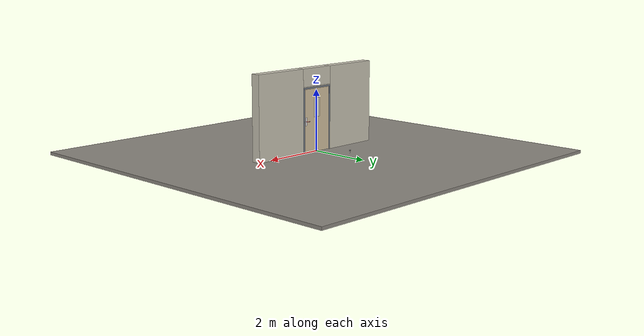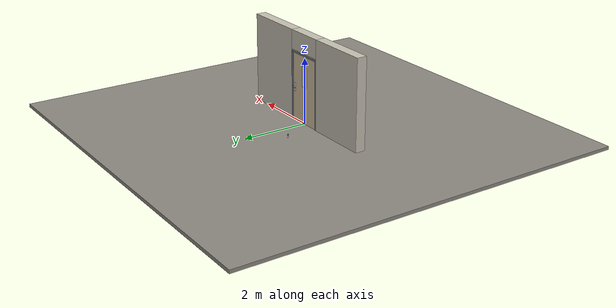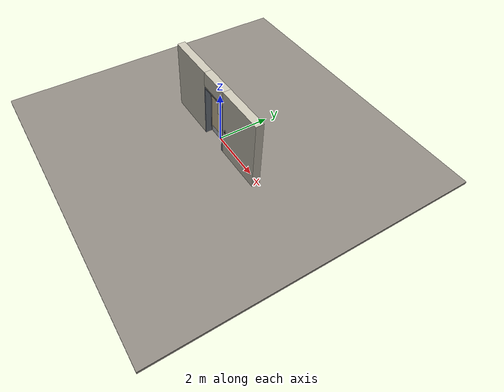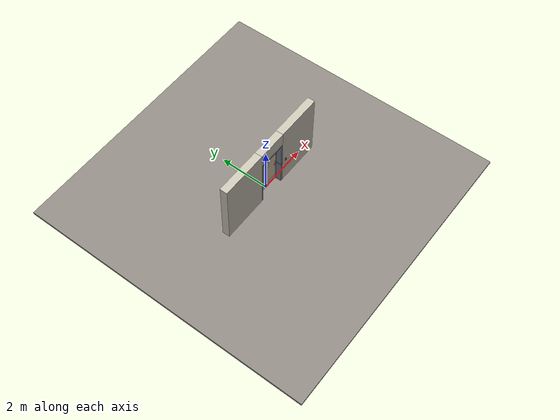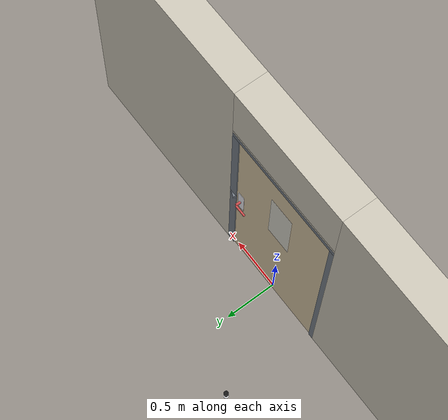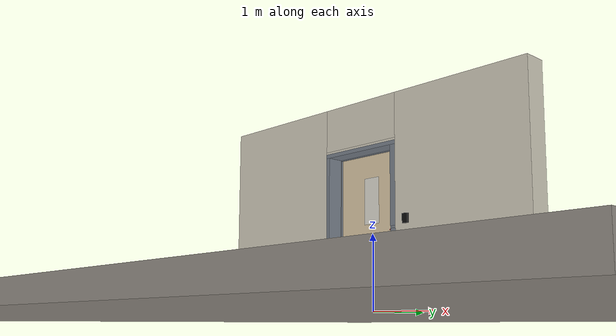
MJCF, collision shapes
<?xml version="1.0" ?>
<mujoco model="db0697_swing_single_full">
  <compiler angle="radian" meshdir="../../hardware" texturedir="../../textures" autolimits="true" inertiafromgeom="false"/>
  <option timestep="0.002" integrator="implicitfast" cone="elliptic" impratio="10" noslip_iterations="3">
    <flag multiccd="enable"/>
  </option>
  <size memory="16M"/>
  <default>
    <geom condim="4" solref="0.005 1" solimp="0.95 0.99 0.001"/>
    <joint solreflimit="0.005 1" solimplimit="0.95 0.99 0.001"/>
    <tendon solreflimit="0.005 1"/>
    <equality solref="0.002 1"/>
  </default>
  <visual>
    <headlight ambient="0.4 0.4 0.4" diffuse="0.7 0.7 0.7" specular="0.2 0.2 0.2"/>
    <quality shadowsize="4096"/>
    <map znear="0.01" zfar="60"/>
  </visual>
  <asset>
    <mesh name="card_reader_38c0bdb077" file="card_reader_38c0bdb077.obj"/>
    <mesh name="hinge_e22b26c0c1" file="hinge_e22b26c0c1.obj"/>
    <mesh name="hinge_jamb_e1d088f8dc" file="hinge_jamb_e1d088f8dc.obj"/>
    <mesh name="lever_56c65af20a" file="lever_56c65af20a.obj"/>
    <material name="mat_floor" rgba="0.55 0.53 0.5 1" specular="0.2" shininess="0.15" reflectance="0"/>
    <material name="mat_wall" rgba="0.78 0.76 0.7 1" specular="0.2" shininess="0.1" reflectance="0"/>
    <material name="mat_leaf" rgba="0.82 0.75 0.62 1" specular="0.2" shininess="0.34" reflectance="0"/>
    <material name="mat_glass" rgba="0.9 0.93 0.95 0.6" specular="0.2" shininess="0.5" reflectance="0.1"/>
    <material name="mat_hinge" rgba="0.65 0.66 0.68 1" specular="0.74" shininess="0.5" reflectance="0.36"/>
    <material name="mat_op_chrome" rgba="0.9 0.9 0.92 1" specular="0.8" shininess="0.9" reflectance="0.4"/>
    <material name="mat_trim" rgba="0.85 0.66 0.3 1" specular="0.8" shininess="0.75" reflectance="0.4"/>
    <material name="mat_reader" rgba="0.05 0.05 0.05 1" specular="0.38" shininess="0.3" reflectance="0.12"/>
    <material name="mat_bolt" rgba="0.75 0.76 0.77 1" specular="0.8" shininess="0.65" reflectance="0.4"/>
    <material name="mat_frame" rgba="0.45 0.48 0.52 1" specular="0.32" shininess="0.6" reflectance="0.08"/>
    <material name="mat_kick" rgba="0.75 0.76 0.77 1" specular="0.8" shininess="0.65" reflectance="0.4"/>
    <material name="mat_wallreader" rgba="0.05 0.05 0.05 1" specular="0.38" shininess="0.3" reflectance="0.12"/>
    <material name="mat_bumper_stop" rgba="0.08 0.08 0.08 1" specular="0.2" shininess="0.1" reflectance="0"/>
    <material name="mat_stop_base" rgba="0.9 0.9 0.92 1" specular="0.8" shininess="0.9" reflectance="0.4"/>
    <texture name="skybox" type="skybox" builtin="gradient" rgb1="0.6 0.7 0.85" rgb2="0.9 0.92 0.95" width="256" height="256"/>
  </asset>
  <worldbody>
    <light name="sun" pos="1.5 -2.5 4" dir="-0.3 0.5 -0.8" directional="true" diffuse="0.8 0.8 0.8" specular="0.3 0.3 0.3" castshadow="true"/>
    <light name="fill" pos="-1.5 2.5 3" dir="0.3 -0.5 -0.7" directional="true" diffuse="0.35 0.35 0.4" castshadow="false"/>
    <camera name="robot_view" pos="0 -2.663187 1.734312" xyaxes="1 0 0 0 0.26963 0.962964" fovy="52"/>
    <camera name="far_view" pos="0 2.421187 1.734312" xyaxes="-1 0 0 0 -0.26963 0.962964" fovy="52"/>
    <camera name="iso" pos="1.932062 -2.256438 2.141063" xyaxes="0.741536 0.670913 0 -0.242917 0.268487 0.932151" fovy="46"/>
    <camera name="detail_handle" pos="0.562 -0.877 1.296" xyaxes="0.97561 0.219512 0 -0.070934 0.315262 0.94635" fovy="38"/>
    <geom name="floor" type="box" size="6 6 0.05" pos="0 0 -0.05" material="mat_floor" group="0" contype="1" conaffinity="1" friction="0.8 0.005 0.0001" density="2400"/>
    <geom name="wall_left" type="box" size="0.9565 0.15 1.35" pos="-1.5435 -0.121 1.35" material="mat_wall" group="0" contype="1" conaffinity="1" friction="0.6 0.005 0.0001" density="800"/>
    <geom name="wall_right" type="box" size="0.9415 0.15 1.35" pos="1.5585 -0.121 1.35" material="mat_wall" group="0" contype="1" conaffinity="1" friction="0.6 0.005 0.0001" density="800"/>
    <geom name="wall_header" type="box" size="0.602 0.15 0.2875" pos="0.015 -0.121 2.4125" material="mat_wall" group="0" contype="1" conaffinity="1" friction="0.6 0.005 0.0001" density="800"/>
    <geom name="hinge_0_jamb" type="mesh" mesh="hinge_jamb_e1d088f8dc" pos="-0.534 0.029 0.259" quat="0 1 0 0" material="mat_hinge" group="1" contype="0" conaffinity="0" density="7850"/>
    <geom name="hinge_1_jamb" type="mesh" mesh="hinge_jamb_e1d088f8dc" pos="-0.534 0.029 1.025" quat="0 1 0 0" material="mat_hinge" group="1" contype="0" conaffinity="0" density="7850"/>
    <geom name="hinge_2_jamb" type="mesh" mesh="hinge_jamb_e1d088f8dc" pos="-0.534 0.029 1.861" quat="0 1 0 0" material="mat_hinge" group="1" contype="0" conaffinity="0" density="7850"/>
    <geom name="jamb_hinge" type="box" size="0.025 0.15 1.0225" pos="-0.562 -0.121 1.0225" material="mat_frame" group="0" contype="1" conaffinity="1" friction="0.6 0.005 0.0001" density="300"/>
    <geom name="strike_1016_wall_n" type="box" size="0.04 0.13225 0.015" pos="0.577 -0.13875 1.016" material="mat_frame" group="0" contype="1" conaffinity="1" friction="0.6 0.005 0.0001" density="300"/>
    <geom name="strike_1016_wall_p" type="box" size="0.04 0.008 0.015" pos="0.577 0.0145 1.016" material="mat_frame" group="0" contype="1" conaffinity="1" friction="0.6 0.005 0.0001" density="300"/>
    <geom name="strike_1016_ramp" type="box" size="0.04 0.016771 0.015" pos="0.580277 0.019611 1.016" quat="0.973249 0 0 -0.229753" material="mat_frame" group="0" contype="1" conaffinity="1" friction="0.12 0.005 0.0001" density="300"/>
    <geom name="strike_1016_back" type="box" size="0.031 0.0065 0.015" pos="0.586 0 1.016" material="mat_frame" group="0" contype="1" conaffinity="1" friction="0.6 0.005 0.0001" density="300"/>
    <geom name="jamb_strike_0" type="box" size="0.04 0.15 0.5005" pos="0.577 -0.121 0.5005" material="mat_frame" group="0" contype="1" conaffinity="1" friction="0.6 0.005 0.0001" density="300"/>
    <geom name="jamb_strike_1" type="box" size="0.04 0.15 0.507" pos="0.577 -0.121 1.538" material="mat_frame" group="0" contype="1" conaffinity="1" friction="0.6 0.005 0.0001" density="300"/>
    <geom name="jamb_head" type="box" size="0.602 0.15 0.025" pos="0.015 -0.121 2.07" material="mat_frame" group="0" contype="1" conaffinity="1" friction="0.6 0.005 0.0001" density="300"/>
    <geom name="head_stud" type="box" size="0.602 0.15 0.015" pos="0.015 -0.121 2.11" material="mat_wall" group="0" contype="1" conaffinity="1" friction="0.6 0.005 0.0001" density="500"/>
    <geom name="stop_hinge" type="box" size="0.0055 0.016 1.0225" pos="-0.5315 -0.0385 1.0225" material="mat_frame" group="0" contype="1" conaffinity="1" friction="0.6 0.005 0.0001" density="300"/>
    <geom name="stop_strike" type="box" size="0.0055 0.016 1.0225" pos="0.5315 -0.0385 1.0225" material="mat_frame" group="0" contype="1" conaffinity="1" friction="0.6 0.005 0.0001" density="300"/>
    <geom name="stop_head" type="box" size="0.537 0.016 0.0055" pos="0 -0.0385 2.0395" material="mat_frame" group="0" contype="1" conaffinity="1" friction="0.6 0.005 0.0001" density="300"/>
    <geom name="wall_reader" type="box" size="0.04 0.015 0.06" pos="0.787 -0.286 1.1" material="mat_wallreader" group="0" contype="1" conaffinity="1" friction="0.6 0.005 0.0001" density="1000"/>
    <geom name="door_stop_base" type="cylinder" size="0.022 0.003" pos="-0.55 0.93595 0.003" material="mat_stop_base" group="0" contype="1" conaffinity="1" friction="0.6 0.005 0.0001" density="7850"/>
    <geom name="door_stop_post" type="cylinder" size="0.012 0.0245" pos="-0.55 0.93595 0.0305" material="mat_stop_base" group="0" contype="1" conaffinity="1" friction="0.6 0.005 0.0001" density="7850"/>
    <geom name="door_stop_bumper" type="cylinder" size="0.022 0.02" pos="-0.55 0.93595 0.075" material="mat_bumper_stop" group="0" contype="1" conaffinity="1" friction="0.6 0.005 0.0001" density="1100"/>
    <site name="approach_point" pos="0 -1.5 0" quat="1 0 0 0" size="0.05" rgba="0.2 0.9 0.2 0.5" group="4"/>
    <site name="goal_point" pos="0 1.5 0" quat="1 0 0 0" size="0.05" rgba="0.2 0.9 0.2 0.5" group="4"/>
    <site name="door_plane_center" pos="0 0 1.0225" quat="1 0 0 0" size="0.02" rgba="0.2 0.9 0.2 0.5" group="4"/>
    <body name="leaf" pos="-0.537 0 0">
      <inertial pos="0.539048 -0.000547 0.982866" mass="65.2901" quat="0.500129 0.498273 0.500263 -0.50133" diaginertia="6.472592629 23.47896614 29.926271376"/>
      <joint name="leaf_hinge" type="hinge" axis="0 0 1" pos="0.003 0.029 0" limited="true" range="0 1.570796" damping="0.525663" frictionloss="0.378534" armature="0.02"/>
      <geom name="leaf_slab" type="box" size="0.5335 0.022 1.016" pos="0.5365 0 1.025" material="mat_leaf" group="0" contype="1" conaffinity="1" friction="0.4 0.005 0.0001" density="1"/>
      <geom name="leaf_glass_0" type="box" size="0.125 0.0228 0.3048" pos="0.5365 0 1.4314" material="mat_glass" group="1" contype="0" conaffinity="0" density="1"/>
      <geom name="hinge_0" type="mesh" mesh="hinge_e22b26c0c1" pos="0.003 0.029 0.259" quat="0 1 0 0" material="mat_hinge" group="1" contype="0" conaffinity="0" density="7850"/>
      <geom name="hinge_1" type="mesh" mesh="hinge_e22b26c0c1" pos="0.003 0.029 1.025" quat="0 1 0 0" material="mat_hinge" group="1" contype="0" conaffinity="0" density="7850"/>
      <geom name="hinge_2" type="mesh" mesh="hinge_e22b26c0c1" pos="0.003 0.029 1.861" quat="0 1 0 0" material="mat_hinge" group="1" contype="0" conaffinity="0" density="7850"/>
      <geom name="leaf_handle_escutcheon_n" type="box" size="0.0375 0.0015 0.13" pos="1.015 -0.0235 1.016" material="mat_op_chrome" group="1" contype="0" conaffinity="0" density="3000"/>
      <geom name="leaf_handle_escutcheon_p" type="box" size="0.0375 0.0015 0.13" pos="1.015 0.0235 1.016" material="mat_op_chrome" group="1" contype="0" conaffinity="0" density="3000"/>
      <geom name="leaf_handle_reader" type="mesh" mesh="card_reader_38c0bdb077" pos="1.015 0.022 1.176" quat="0 0 0.707107 0.707107" material="mat_reader" group="1" contype="0" conaffinity="0" density="2000"/>
      <geom name="leaf_latch_bolt_faceplate" type="box" size="0.0006 0.011 0.025" pos="1.0694 0 1.016" material="mat_bolt" group="1" contype="0" conaffinity="0" density="8500"/>
      <geom name="kick_plate_n" type="box" size="0.5035 0.0008 0.125" pos="0.5365 -0.0228 0.144" material="mat_kick" group="2" contype="0" conaffinity="0" density="7900"/>
      <site name="leaf_edge_mid" pos="1.07 0 1.016" quat="1 0 0 0" size="0.02" rgba="0.2 0.9 0.2 0.5" group="4"/>
      <body name="leaf_handle" pos="1.015 0 1.016">
        <inertial pos="-0.034904 0 0" mass="0.739068" quat="0.707107 0 0 -0.707107" diaginertia="0.001260094 0.003272501 0.004494637"/>
        <joint name="leaf_handle_hinge" type="hinge" axis="0 -1 0" limited="true" range="0 0.87" damping="0.231314" frictionloss="0.06" stiffness="1.1" springref="-0.454545" armature="0.01"/>
        <geom name="leaf_handle_spindle" type="cylinder" size="0.006 0.034" pos="0 0 0" quat="0.707107 -0.707107 0 0" material="mat_op_chrome" group="1" contype="0" conaffinity="0" density="7850"/>
        <geom name="leaf_handle_lever_n" type="mesh" mesh="lever_56c65af20a" pos="0 -0.022 0" quat="0.707107 0.707107 0 0" material="mat_op_chrome" group="1" contype="0" conaffinity="0" density="3000"/>
        <geom name="leaf_handle_lever_col_n" type="capsule" size="0.0095 0.0505" pos="-0.06 -0.077 0" quat="0.707107 0 -0.707107 0" material="mat_op_chrome" group="3" contype="1" conaffinity="1" rgba="0.8 0.3 0.3 0.25" friction="0.7 0.01 0.0001" density="3000"/>
        <geom name="leaf_handle_hub_col_n" type="cylinder" size="0.012 0.022" pos="0 -0.052 0" quat="0.707107 -0.707107 0 0" material="mat_op_chrome" group="3" contype="1" conaffinity="1" rgba="0.8 0.3 0.3 0.25" friction="0.6 0.005 0.0001" density="3000"/>
        <geom name="leaf_handle_lever_p" type="mesh" mesh="lever_56c65af20a" pos="0 0.022 0" quat="-0.707107 0.707107 0 0" material="mat_op_chrome" group="1" contype="0" conaffinity="0" density="3000"/>
        <geom name="leaf_handle_lever_col_p" type="capsule" size="0.0095 0.0505" pos="-0.06 0.077 0" quat="0.707107 0 -0.707107 0" material="mat_op_chrome" group="3" contype="1" conaffinity="1" rgba="0.8 0.3 0.3 0.25" friction="0.7 0.01 0.0001" density="3000"/>
        <geom name="leaf_handle_hub_col_p" type="cylinder" size="0.012 0.022" pos="0 0.052 0" quat="0.707107 -0.707107 0 0" material="mat_op_chrome" group="3" contype="1" conaffinity="1" rgba="0.8 0.3 0.3 0.25" friction="0.6 0.005 0.0001" density="3000"/>
        <site name="leaf_handle_grip_n" pos="-0.096 -0.077 0" quat="1 0 0 0" size="0.012" rgba="0.2 0.9 0.2 0.5" group="4"/>
        <site name="leaf_handle_grip_p" pos="-0.096 0.077 0" quat="1 0 0 0" size="0.012" rgba="0.2 0.9 0.2 0.5" group="4"/>
      </body>
      <body name="leaf_latch_bolt" pos="1.07 0 1.016">
        <inertial pos="-0.008 0 0" mass="0.027149" quat="0 0 0.707107 0.707107" diaginertia="0.000000328 0.000003943 0.000003943"/>
        <joint name="leaf_latch_bolt_slide" type="slide" axis="-1 0 0" limited="true" range="0 0.014" damping="2" frictionloss="0.3" stiffness="400" springref="-0.01" armature="0.1"/>
        <geom name="leaf_latch_bolt_capsule" type="capsule" size="0.005 0.017" pos="-0.008 0 0" quat="0.707107 0 0.707107 0" material="mat_bolt" group="0" contype="1" conaffinity="1" friction="0.2 0.005 0.0001" density="8500"/>
      </body>
    </body>
  </worldbody>
  <tendon>
    <fixed name="leaf_latch_bolt_coupling" limited="true" range="0 10">
      <joint joint="leaf_latch_bolt_slide" coef="1"/>
      <joint joint="leaf_handle_hinge" coef="-0.017284"/>
    </fixed>
  </tendon>
  <sensor>
    <jointpos name="leaf_hinge_pos" joint="leaf_hinge"/>
    <jointvel name="leaf_hinge_vel" joint="leaf_hinge"/>
    <jointpos name="leaf_handle_hinge_pos" joint="leaf_handle_hinge"/>
    <jointvel name="leaf_handle_hinge_vel" joint="leaf_handle_hinge"/>
    <jointpos name="leaf_latch_bolt_slide_pos" joint="leaf_latch_bolt_slide"/>
    <jointvel name="leaf_latch_bolt_slide_vel" joint="leaf_latch_bolt_slide"/>
  </sensor>
</mujoco>
